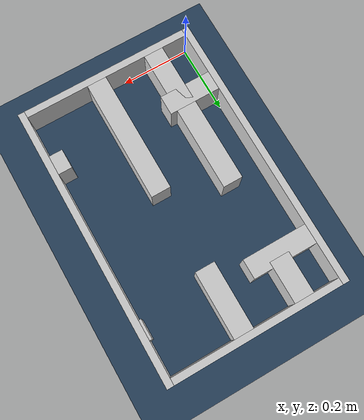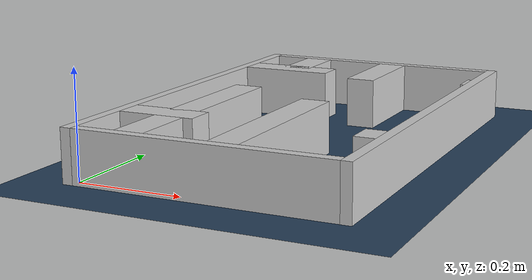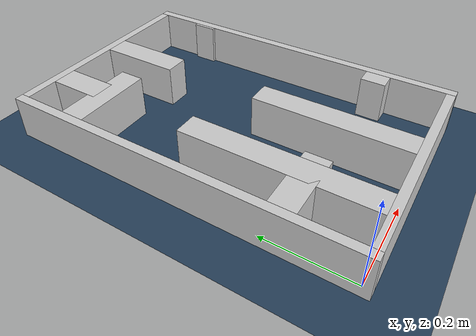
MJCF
<?xml version="1.0" ?>
<mujoco model="generated_real_template">
  <compiler angle="degree"/>
  <option timestep="0.002" integrator="implicitfast" iterations="100" cone="elliptic"/>
  <default>
    <geom density="1"/>
  </default>
  <asset>
    <texture builtin="gradient" height="3072" rgb1="0.3 0.5 0.7" rgb2="0 0 0" type="skybox" width="512"/>
    <texture builtin="checker" height="300" mark="edge" markrgb="0.8 0.8 0.8" name="groundplane" rgb1="0.2 0.3 0.4" rgb2="0.1 0.2 0.3" type="2d" width="300"/>
    <material name="groundplane" reflectance="0.2" texrepeat="5 5" texture="groundplane" texuniform="true"/>
  </asset>
  <worldbody>
    <light dir="0 0 -1" directional="true" pos="0 0 1.5"/>
    <geom name="floor" type="plane" condim="4" friction="0.5 0.005 0.001" material="groundplane" size="0 0 0.05"/>
    <body name="walls">
      <geom name="wall_boundary_left" type="box" condim="4" friction="1.0 0.005 0.0001" rgba="0.8 0.8 0.8 1" pos="-0.010000 0.387500 0.050000" euler="0 0 0.000000" size="0.010000 0.407500 0.050000"/>
      <geom name="wall_boundary_right" type="box" condim="4" friction="1.0 0.005 0.0001" rgba="0.8 0.8 0.8 1" pos="0.500000 0.387500 0.050000" euler="0 0 0.000000" size="0.010000 0.407500 0.050000"/>
      <geom name="wall_boundary_bottom" type="box" condim="4" friction="1.0 0.005 0.0001" rgba="0.8 0.8 0.8 1" pos="0.245000 -0.010000 0.050000" euler="0 0 0.000000" size="0.245000 0.010000 0.050000"/>
      <geom name="wall_boundary_top" type="box" condim="4" friction="1.0 0.005 0.0001" rgba="0.8 0.8 0.8 1" pos="0.245000 0.785000 0.050000" euler="0 0 0.000000" size="0.245000 0.010000 0.050000"/>
      <geom name="wall_inner_1_1" type="box" condim="4" friction="1.0 0.005 0.0001" rgba="0.8 0.8 0.8 1" pos="0.093290 0.644169 0.050000" euler="0 0 0.000000" size="0.093290 0.028500 0.050000"/>
      <geom name="wall_inner_1_2" type="box" condim="4" friction="1.0 0.005 0.0001" rgba="0.8 0.8 0.8 1" pos="0.486182 0.644169 0.050000" euler="0 0 0.000000" size="0.003818 0.028500 0.050000"/>
      <geom name="wall_inner_2_1" type="box" condim="4" friction="1.0 0.005 0.0001" rgba="0.8 0.8 0.8 1" pos="0.075101 0.154273 0.050000" euler="0 0 0.000000" size="0.075101 0.028500 0.050000"/>
      <geom name="wall_inner_2_2" type="box" condim="4" friction="1.0 0.005 0.0001" rgba="0.8 0.8 0.8 1" pos="0.470148 0.154273 0.050000" euler="0 0 0.000000" size="0.019852 0.028500 0.050000"/>
      <geom name="wall_inner_3_1" type="box" condim="4" friction="1.0 0.005 0.0001" rgba="0.8 0.8 0.8 1" pos="0.279653 0.178953 0.050000" euler="0 0 90.000000" size="0.178953 0.028500 0.050000"/>
      <geom name="wall_inner_3_2" type="box" condim="4" friction="1.0 0.005 0.0001" rgba="0.8 0.8 0.8 1" pos="0.279653 0.679040 0.050000" euler="0 0 90.000000" size="0.095960 0.028500 0.050000"/>
      <geom name="wall_inner_4_1" type="box" condim="4" friction="1.0 0.005 0.0001" rgba="0.8 0.8 0.8 1" pos="0.102408 0.214033 0.050000" euler="0 0 90.000000" size="0.214033 0.028500 0.050000"/>
      <geom name="wall_inner_4_2" type="box" condim="4" friction="1.0 0.005 0.0001" rgba="0.8 0.8 0.8 1" pos="0.102408 0.715062 0.050000" euler="0 0 90.000000" size="0.059938 0.028500 0.050000"/>
    </body>
  </worldbody>
</mujoco>
